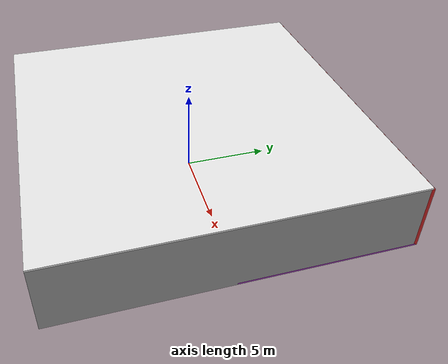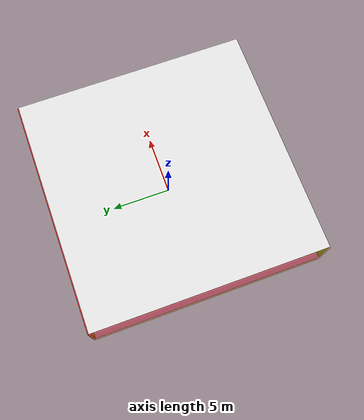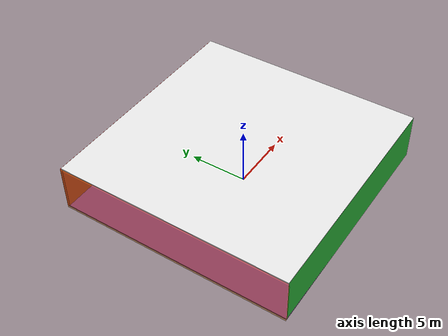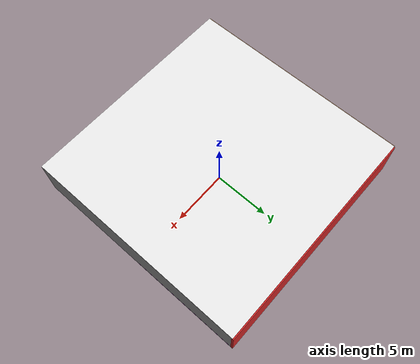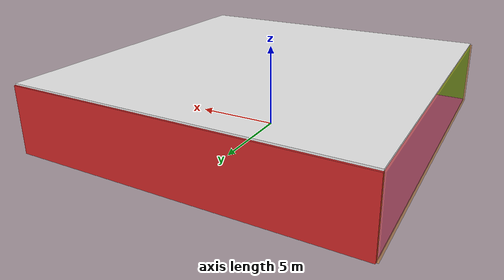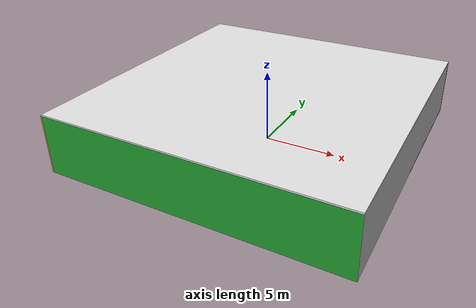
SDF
<sdf version="1.4">
 <world name="default">
  <physics type="ode">
   <max_step_size>0.001</max_step_size>
   <real_time_factor>1</real_time_factor>
   <real_time_update_rate>1000</real_time_update_rate>
   <gravity>0 0 -9.8</gravity>
  </physics>
  <scene><ambient>0.4 0.4 0.4 1</ambient><background>0.7 0.7 0.7 1</background><shadows>1</shadows></scene>
  <model name="Surrounding">
   <static>1</static>
   <link name="Ceiling">
    <collision name="Ceiling_Collision"><geometry><box><size>20 20 0.1</size></box></geometry></collision>
    <visual name="Ceiling_Visual">
     <geometry><box><size>20 20 0.1</size></box></geometry>
     <material>
      <script><uri>file://media/materials/scripts/gazebo.material</uri><name>Gazebo/WhiteGlow</name></script>
     </material>
    </visual>
    <pose>0 0 4.05 0 0 0</pose>
   </link>
   <link name="Wall_South">
    <collision name="Wall_South_Collision">
     <geometry><box><size>20 0 4</size></box></geometry>
     <pose>0 0 2 0 -0 0</pose>
    </collision>
    <visual name="Wall_South_Visual">
     <pose>0 0 2 0 -0 0</pose>
     <geometry><box><size>20 0 4</size></box></geometry>
     <material>
      <script><uri>file://media/materials/scripts/gazebo.material</uri><name>Gazebo/Green</name></script>
     </material>
    </visual>
    <velocity_decay><linear>0</linear><angular>0</angular></velocity_decay>
    <pose>0 -10 0 0 -0 0</pose>
   </link>
   <link name="Wall_East">
    <collision name="Wall_21_Collision">
     <geometry><box><size>20 0 4</size></box></geometry>
     <pose>0 0 2 0 -0 0</pose>
    </collision>
    <visual name="Wall_21_Visual">
     <pose>0 0 2 0 -0 0</pose>
     <geometry><box><size>20 0 4</size></box></geometry>
     <material>
      <script><uri>file://media/materials/scripts/gazebo.material</uri><name>Gazebo/GreyGradientSky</name></script>
     </material>
    </visual>
    <velocity_decay><linear>0</linear><angular>0</angular></velocity_decay>
    <pose>10 0 0 0 -0 1.5708</pose>
   </link>
   <link name="Wall_North">
    <collision name="Wall_22_Collision">
     <geometry><box><size>20 0.2 4</size></box></geometry>
     <pose>0 0 2 0 -0 0</pose>
    </collision>
    <visual name="Wall_22_Visual">
     <pose>0 0 2 0 -0 0</pose>
     <geometry><box><size>20 0.2 4</size></box></geometry>
     <material>
      <script><uri>file://media/materials/scripts/gazebo.material</uri><name>Gazebo/Red</name></script>
     </material>
    </visual>
    <velocity_decay><linear>0</linear><angular>0</angular></velocity_decay>
    <pose>0 10 0 0 -0 0</pose>
   </link>
   <link name="Wall_West">
    <collision name="Wall_23_Collision">
     <geometry><box><size>20 0.2 4</size></box></geometry>
     <pose>0 0 2 0 -0 0</pose>
    </collision>
    <visual name="Wall_23_Visual">
     <pose>0 0 2 0 -0 0</pose>
     <geometry><box><size>20 0.2 4</size></box></geometry>
     <material>
      <script>
       <uri>file://media/materials/scripts/gazebo.material</uri>
       <name>Gazebo/OrangeTransparent</name>
      </script>
     </material>
    </visual>
    <velocity_decay><linear>0</linear><angular>0</angular></velocity_decay>
    <pose>-10 0 0 0 0 -1.5708</pose>
   </link>
   <link name="Ground_link">
    <collision name="collision">
     <pose>0 0 .05 0 -0 0</pose>
     <geometry><box><size>20 20 0.1</size></box></geometry>
    </collision>
    <visual name="visual">
     <pose>0 0 .05 0 -0 0</pose>
     <geometry><box><size>20 20 0.1</size></box></geometry>
     <material>
      <script><uri>file://media/materials/scripts/gazebo.material</uri><name>Gazebo/Purple</name></script>
     </material>
    </visual>
   </link>
   <static>1</static>
  </model>
  <spherical_coordinates>
   <surface_model>EARTH_WGS84</surface_model>
   <latitude_deg>0</latitude_deg>
   <longitude_deg>0</longitude_deg>
   <elevation>0</elevation>
   <heading_deg>0</heading_deg>
  </spherical_coordinates>
  <light name="lightball_0" type="diffuse">
   <diffuse>0.8 0.8 0.8 1</diffuse>
   <specular>0.2 0.2 0.2 1</specular>
   <attenuation>
    <range>100</range>
    <constant>0.7</constant>
    <linear>0.01</linear>
    <quadratic>0.001</quadratic>
   </attenuation>
   <direction>-0.5 0.1 -0.9</direction>
   <pose>-4.96182141821 -9.7414763361 3.49940618507 0 0 0</pose>
  </light>
  <light name="lightball_1" type="diffuse">
   <diffuse>0.8 0.8 0.8 1</diffuse>
   <specular>0.2 0.2 0.2 1</specular>
   <attenuation>
    <range>100</range>
    <constant>0.7</constant>
    <linear>0.01</linear>
    <quadratic>0.001</quadratic>
   </attenuation>
   <direction>-0.5 0.1 -0.9</direction>
   <pose>-3.54258898081 -4.0175783649 3.12523628443 0 0 0</pose>
  </light>
  <light name="lightball_2" type="diffuse">
   <diffuse>0.8 0.8 0.8 1</diffuse>
   <specular>0.2 0.2 0.2 1</specular>
   <attenuation>
    <range>100</range>
    <constant>0.7</constant>
    <linear>0.01</linear>
    <quadratic>0.001</quadratic>
   </attenuation>
   <direction>-0.5 0.1 -0.9</direction>
   <pose>9.46310973973 3.44444532403 3.38735863456 0 0 0</pose>
  </light>
  <light name="lightball_3" type="diffuse">
   <diffuse>0.8 0.8 0.8 1</diffuse>
   <specular>0.2 0.2 0.2 1</specular>
   <attenuation>
    <range>100</range>
    <constant>0.7</constant>
    <linear>0.01</linear>
    <quadratic>0.001</quadratic>
   </attenuation>
   <direction>-0.5 0.1 -0.9</direction>
   <pose>-3.6851028298 6.09015419784 3.37150454356 0 0 0</pose>
  </light>
  <light name="lightball_4" type="diffuse">
   <diffuse>0.8 0.8 0.8 1</diffuse>
   <specular>0.2 0.2 0.2 1</specular>
   <attenuation>
    <range>100</range>
    <constant>0.7</constant>
    <linear>0.01</linear>
    <quadratic>0.001</quadratic>
   </attenuation>
   <direction>-0.5 0.1 -0.9</direction>
   <pose>1.22318165784 -6.6243898777 1.78105661626 0 0 0</pose>
  </light>
  <light name="lightball_5" type="diffuse">
   <diffuse>0.8 0.8 0.8 1</diffuse>
   <specular>0.2 0.2 0.2 1</specular>
   <attenuation>
    <range>100</range>
    <constant>0.7</constant>
    <linear>0.01</linear>
    <quadratic>0.001</quadratic>
   </attenuation>
   <direction>-0.5 0.1 -0.9</direction>
   <pose>-4.90245149496 4.90121685396 3.15778934822 0 0 0</pose>
  </light>
  <light name="lightball_6" type="diffuse">
   <diffuse>0.8 0.8 0.8 1</diffuse>
   <specular>0.2 0.2 0.2 1</specular>
   <attenuation>
    <range>100</range>
    <constant>0.7</constant>
    <linear>0.01</linear>
    <quadratic>0.001</quadratic>
   </attenuation>
   <direction>-0.5 0.1 -0.9</direction>
   <pose>-4.22441252223 -0.641334205618 2.3090877264 0 0 0</pose>
  </light>
  <light name="lightball_7" type="diffuse">
   <diffuse>0.8 0.8 0.8 1</diffuse>
   <specular>0.2 0.2 0.2 1</specular>
   <attenuation>
    <range>100</range>
    <constant>0.7</constant>
    <linear>0.01</linear>
    <quadratic>0.001</quadratic>
   </attenuation>
   <direction>-0.5 0.1 -0.9</direction>
   <pose>5.76850736503 -5.11698820618 1.72985074488 0 0 0</pose>
  </light>
  <include>
   <uri>model://robocup_3Dsim_goal</uri>
   <pose>-1.63090434479 1.95790553426 0 0 0 3.12962413185</pose>
  </include>
 </world>
</sdf>

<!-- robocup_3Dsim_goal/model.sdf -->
<sdf version="1.5">
  <model name="robocup_3d_goal">
    <static>true</static>
    <link name="left_post">
      <pose>0 1.05 0.45 0 0 0</pose>
      <collision name="collision">
        <geometry>
          <cylinder>
            <radius>0.05</radius>
            <length>0.9</length>
          </cylinder>
        </geometry>
      </collision>
      <visual name="visual">
        <geometry>
          <cylinder>
            <radius>0.05</radius>
            <length>0.9</length>
          </cylinder>
        </geometry>
        <material>
          <script>
            <uri>file://media/materials/scripts/gazebo.material</uri>
            <name>Gazebo/ZincYellow</name>
          </script>
        </material>
      </visual>
    </link>
    <link name="left_support_horiz_lower">
      <pose>0.30 1.05 0.01 0 0 0</pose>
      <collision name="collision">
        <geometry>
          <box>
            <size>0.50 0.02 0.02</size>
          </box>
        </geometry>
      </collision>
      <visual name="visual">
        <geometry>
          <box>
            <size>0.50 0.02 0.02</size>
          </box>
        </geometry>
        <material>
          <script>
            <uri>file://media/materials/scripts/gazebo.material</uri>
            <name>Gazebo/White</name>
          </script>
        </material>
      </visual>
    </link>
    <link name="left_support_horiz_upper">
      <pose>0.30 1.05 0.79 0 0 0</pose>
      <collision name="collision">
        <geometry>
          <box>
            <size>0.50 0.02 0.02</size>
          </box>
        </geometry>
      </collision>
      <visual name="visual">
        <geometry>
          <box>
            <size>0.50 0.02 0.02</size>
          </box>
        </geometry>
        <material>
          <script>
            <uri>file://media/materials/scripts/gazebo.material</uri>
            <name>Gazebo/White</name>
          </script>
        </material>
      </visual>
    </link>
    <link name="left_support_vertical">
      <pose>0.56 1.05 0.4 0 1.5708 0</pose>
      <collision name="collision">
        <geometry>
          <box>
            <size>0.80 0.02 0.02</size>
          </box>
        </geometry>
      </collision>
      <visual name="visual">
        <geometry>
          <box>
            <size>0.80 0.02 0.02</size>
          </box>
        </geometry>
        <material>
          <script>
            <uri>file://media/materials/scripts/gazebo.material</uri>
            <name>Gazebo/White</name>
          </script>
        </material>
      </visual>
    </link>
    <link name="right_support_horiz_lower">
      <pose>0.30 -1.05 0.01 0 0 0</pose>
      <collision name="collision">
        <geometry>
          <box>
            <size>0.50 0.02 0.02</size>
          </box>
        </geometry>
      </collision>
      <visual name="visual">
        <geometry>
          <box>
            <size>0.50 0.02 0.02</size>
          </box>
        </geometry>
        <material>
          <script>
            <uri>file://media/materials/scripts/gazebo.material</uri>
            <name>Gazebo/White</name>
          </script>
        </material>
      </visual>
    </link>
    <link name="right_support_horiz_upper">
      <pose>0.30 -1.05 0.79 0 0 0</pose>
      <collision name="collision">
        <geometry>
          <box>
            <size>0.50 0.02 0.02</size>
          </box>
        </geometry>
      </collision>
      <visual name="visual">
        <geometry>
          <box>
            <size>0.50 0.02 0.02</size>
          </box>
        </geometry>
        <material>
          <script>
            <uri>file://media/materials/scripts/gazebo.material</uri>
            <name>Gazebo/White</name>
          </script>
        </material>
      </visual>
    </link>
    <link name="right_support_vertical">
      <pose>0.56 -1.05 0.4 0 1.5708 0</pose>
      <collision name="collision">
        <geometry>
          <box>
            <size>0.80 0.02 0.02</size>
          </box>
        </geometry>
      </collision>
      <visual name="visual">
        <geometry>
          <box>
            <size>0.80 0.02 0.02</size>
          </box>
        </geometry>
        <material>
          <script>
            <uri>file://media/materials/scripts/gazebo.material</uri>
            <name>Gazebo/White</name>
          </script>
        </material>
      </visual>
    </link>
    <link name="center_support_horiz_lower">
      <pose>0.56 0 0.01 0 1.5708 0</pose>
      <collision name="collision">
        <geometry>
          <box>
            <size>0.02 2.08 0.02</size>
          </box>
        </geometry>
      </collision>
      <visual name="visual">
        <geometry>
          <box>
            <size>0.02 2.08 0.02</size>
          </box>
        </geometry>
        <material>
          <script>
            <uri>file://media/materials/scripts/gazebo.material</uri>
            <name>Gazebo/White</name>
          </script>
        </material>
      </visual>
    </link>
    <link name="center_support_horiz_upper">
      <pose>0.56 0 0.79 0 1.5708 0</pose>
      <collision name="collision">
        <geometry>
          <box>
            <size>0.02 2.08 0.02</size>
          </box>
        </geometry>
      </collision>
      <visual name="visual">
        <geometry>
          <box>
            <size>0.02 2.08 0.02</size>
          </box>
        </geometry>
        <material>
          <script>
            <uri>file://media/materials/scripts/gazebo.material</uri>
            <name>Gazebo/White</name>
          </script>
        </material>
      </visual>
    </link>
    <link name="right_post">
      <pose>0 -1.05 0.45 0 0 0</pose>
      <collision name="collision">
        <geometry>
          <cylinder>
            <radius>0.05</radius>
            <length>0.9</length>
          </cylinder>
        </geometry>
      </collision>
      <visual name="visual">
        <geometry>
          <cylinder>
            <radius>0.05</radius>
            <length>0.9</length>
          </cylinder>
        </geometry>
        <material>
          <script>
            <uri>file://media/materials/scripts/gazebo.material</uri>
            <name>Gazebo/ZincYellow</name>
          </script>
        </material>
      </visual>
    </link>
    <link name="crossbar">
      <pose>0 0 0.85 1.57 1.57 0</pose>
      <collision name="collision">
        <geometry>
          <cylinder>
            <radius>0.05</radius>
            <length>2.0</length>
          </cylinder>
        </geometry>
      </collision>
      <visual name="visual">
        <geometry>
          <cylinder>
            <radius>0.05</radius>
            <length>2.0</length>
          </cylinder>
        </geometry>
        <material>
          <script>
            <uri>file://media/materials/scripts/gazebo.material</uri>
            <name>Gazebo/ZincYellow</name>
          </script>
        </material>
      </visual>
    </link>
    <link name="center_net">
      <pose>0.56 0 0.40 0 0 0</pose>
      <collision name="collision">
        <geometry>
          <box>
            <size>0.01 2.1 0.80</size>
          </box>
        </geometry>
      </collision>
      <visual name="visual">
        <geometry>
          <box>
            <size>0.01 2.1 0.80</size>
          </box>
        </geometry>
        <material>
          <script>
            <uri>model://../model_source/models/robocup09_spl_field/materials/scripts/</uri>
            <uri>model://../model_source/models/robocup09_spl_field/materials/textures/</uri>
            <name>RoboCup/Net</name>
          </script>
        </material>
      </visual>
    </link>
    <link name="left_net">
      <pose>0.30 1.05 0.40 0 0 0</pose>
      <collision name="collision">
        <geometry>
          <box>
            <size>0.50 0.01 0.76</size>
          </box>
        </geometry>
      </collision>
      <visual name="visual">
        <geometry>
          <box>
            <size>0.50 0.01 0.76</size>
          </box>
        </geometry>
        <material>
          <script>
            <uri>model://../model_source/models/robocup09_spl_field/materials/scripts/</uri>
            <uri>model://../model_source/models/robocup09_spl_field/materials/textures/</uri>
            <name>RoboCup/Net</name>
          </script>
        </material>
      </visual>
    </link>
    <link name="right_net">
      <pose>0.30 -1.05 0.40 0 0 0</pose>
      <collision name="collision">
        <geometry>
          <box>
            <size>0.50 0.01 0.76</size>
          </box>
        </geometry>
      </collision>
      <visual name="visual">
        <geometry>
          <box>
            <size>0.50 0.01 0.76</size>
          </box>
        </geometry>
        <material>
          <script>
            <uri>model://../model_source/models/robocup09_spl_field/materials/scripts/</uri>
            <uri>model://../model_source/models/robocup09_spl_field/materials/textures/</uri>
            <name>RoboCup/Net</name>
          </script>
        </material>
      </visual>
    </link>
  </model>
</sdf>
